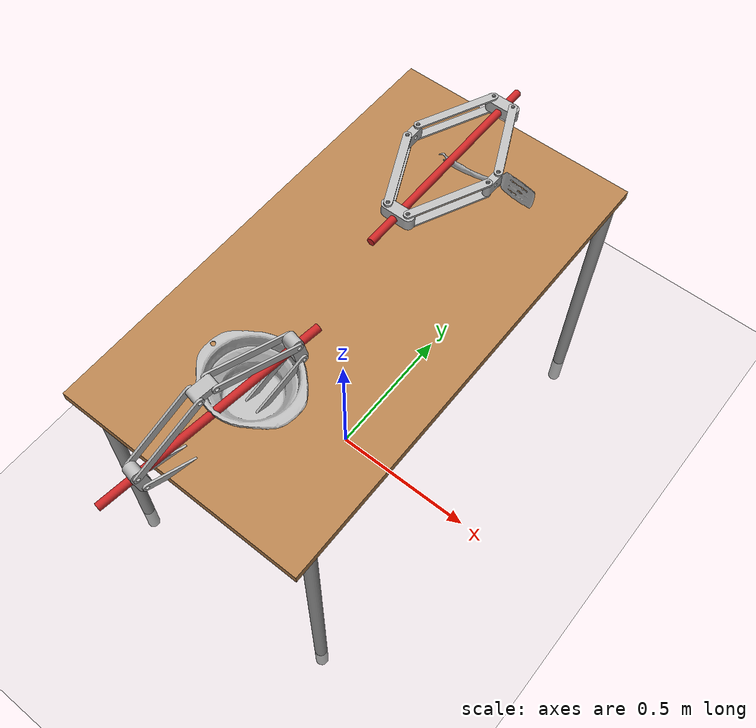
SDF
<?xml version='1.0'?>
<sdf version="1.6">
    <world name="big_bowl_spatula_v">

        <include>
            <uri>model://sun</uri>
        </include>

        <include>
            <uri>model://ground_plane</uri>
        </include>

        <include>
            <uri>model://b_spatula</uri>
            <pose>0.140489 0.527566 0.997957 1.571605 -0.058101 -2.939758</pose>
        </include>

        <plugin name="grains_factory" filename="libGrainsFactoryPlugin.so">
            <pose>0.024164 -0.383989 0.959287 0 0 0</pose>
            <mass>0.001</mass>
            <radius>0.015</radius>
            <quantity>100</quantity>
            <friction>0.4</friction>
            <friction2>0.4</friction2>
            <velocity_decay>0.3</velocity_decay>
        </plugin>

        <include>
            <uri>model://b_big_bowl</uri>
            <pose>0.024164 -0.383989 0.959287 -0.017186 -0.000884 -0.101566</pose>
        </include>

        <include>
            <uri>model://table</uri>
            <pose>0.021929 0.062805 -0.116833 0 0 -1.571974</pose>
        </include>

        <!-- Left Gripper -->
        <include>
            <uri>model://gripper</uri>
            <name>left_ee</name>
            <pose>0 0.5 1 0 0 0</pose>

            <plugin name="l_force_controller" filename="libvelocity_controller_plugin.so">
              <linkName>link</linkName>
              <topicName>set_l_ee_twist</topicName>
              <gains>
                <linear>
                  <P>0.1</P>
                  <I>0.0</I>
                  <D>0.02</D>
                </linear>
                <angular>
                  <P>0.0001</P>
                  <I>0.0</I>
                  <D>0.000002</D>
                </angular>
              </gains>
            </plugin>

            <plugin name="l_grip" filename="libGripPlugin.so">
              <parentLinkName>link</parentLinkName>
              <childLinkName>b_spatula::link</childLinkName>
              <relativePose>0.14 0.028 -0.002 -1.57 3.20 0.20</relativePose>
            </plugin>

        </include>

        <!-- Right Gripper -->
        <include>
            <uri>model://gripper</uri>
            <name>right_ee</name>
            <pose>0 -0.5 1 1.547368 1.402341 1.343703</pose>

            <plugin name="r_force_controller" filename="libvelocity_controller_plugin.so">
              <linkName>link</linkName>
              <topicName>set_r_ee_twist</topicName>
              <gains>
                <linear>
                  <P>0.1</P>
                  <I>0.0</I>
                  <D>0.02</D>
                </linear>
                <angular>
                  <P>0.1</P>
                  <I>0.0</I>
                  <D>0.002</D>
                </angular>
              </gains>
            </plugin>

            <plugin name="r_grip" filename="libGripPlugin.so">
              <parentLinkName>link</parentLinkName>
              <childLinkName>b_big_bowl::link</childLinkName>
              <relativePose>0.06 0.11 0 -1.57 -1.35 1.3</relativePose>
            </plugin>

        </include>

        <plugin name="feature_visualization_plugin" filename="libgiskard_visualization_plugin.so"></plugin>

        <gui>
            <camera name='user_camera'>
                <pose>1.700789 1.175709 1.670612 0 0.375643 -2.675000</pose>
                <view_controller>orbit</view_controller>
            </camera>
        </gui>

    </world>
</sdf>

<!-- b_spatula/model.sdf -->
<sdf version='1.6'>
	<model name='b_spatula'>
		<static>false</static>
		<pose>0 0 0 0 0 0</pose>

		<link name='link'>
			<inertial>
			<mass>0.11</mass>
			<pose>0.00088072 -6.5132e-05 0.00086388 0 0 0</pose>
				<inertia>
					<ixx>8.1404e-07</ixx>
					<ixy>0</ixy>
					<ixz>0</ixz>
					<iyy>1.1521e-06</iyy>
					<iyz>0</iyz>
					<izz>5.3661e-07</izz>
				</inertia>
			</inertial>

			<sensor name="tool_contact_sensor" type="contact">
				<always_on>true</always_on>
				<update_rate>30.0</update_rate>
				<contact>
					<collision>collision</collision>
				</contact>
				<plugin name="tool_bumper" filename="libgazebo_ros_bumper.so">
					<bumperTopicName>tool_contact_sensor_state</bumperTopicName>
					<frameName>world</frameName>
				</plugin>
			</sensor>

			<collision name='collision'>
				<geometry>
					<mesh>
						<uri>model://b_spatula/b_spatula.dae</uri>
					</mesh>
				</geometry>
				<surface>
					<friction>
						<ode>
							<mu>0.2</mu>
							<mu2>0.2</mu2>
						</ode>
					</friction>
				</surface>
			</collision>
			<visual name='visual'>
				<geometry>
					<mesh>
						<uri>model://b_spatula/b_spatula.dae</uri>
					</mesh>
				</geometry>
			</visual>
		</link>
	</model>
</sdf>

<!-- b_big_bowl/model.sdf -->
<sdf version='1.6'>
	<model name='b_big_bowl'>
		<static>false</static>
		<pose>0 0 0 0 0 0</pose>

		<link name='link'>
			<inertial>
			<mass>0.35</mass>
			<pose>-0.0022966 -0.0039142 0.0041527 0 0 0</pose>
				<inertia>
					<ixx>0.0009479167</ixx>
					<iyy>0.0009479167</iyy>
					<izz>0.00175</izz>
				</inertia>
			</inertial>
			<collision name='collision'>
				<geometry>
					<mesh>
						<uri>model://b_big_bowl/b_big_bowl.dae</uri>
					</mesh>
				</geometry>
				<surface>
					<friction>
						<ode>
							<mu>0.2</mu>
							<mu2>0.2</mu2>
						</ode>
					</friction>
				</surface>
			</collision>
			<visual name='visual'>
				<geometry>
					<mesh>
						<uri>model://b_big_bowl/b_big_bowl.dae</uri>
					</mesh>
				</geometry>
			</visual>
		</link>
	</model>
</sdf>

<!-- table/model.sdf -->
<sdf version="1.5">
  <model name="table">
    <static>true</static>
    <link name="link">
      <collision name="surface">
        <pose>0 0 1.0 0 0 0</pose>
        <geometry>
          <box>
            <size>1.5 0.8 0.03</size>
          </box>
        </geometry>
        <surface>
          <friction>
            <ode>
              <mu>0.6</mu>
              <mu2>0.6</mu2>
            </ode>
          </friction>
        </surface>
      </collision>
      <visual name="visual1">
        <pose>0 0 1.0 0 0 0</pose>
        <geometry>
          <box>
            <size>1.5 0.8 0.03</size>
          </box>
        </geometry>
        <material>
          <script>
            <uri>model://media/materials/scripts/gazebo.material</uri>
            <name>Gazebo/Wood</name>
          </script>
        </material>
      </visual>
      <collision name="front_left_leg">
        <pose>0.68 0.38 0.5 0 0 0</pose>
        <geometry>
          <cylinder>
            <radius>0.02</radius>
            <length>1.0</length>
          </cylinder>
        </geometry>
      </collision>
      <visual name="front_left_leg">
        <pose>0.68 0.38 0.5 0 0 0</pose>
        <geometry>
          <cylinder>
            <radius>0.02</radius>
            <length>1.0</length>
          </cylinder>
        </geometry>
        <material>
          <script>
            <uri>model://media/materials/scripts/gazebo.material</uri>
            <name>Gazebo/Grey</name>
          </script>
        </material>
      </visual>
      <collision name="front_right_leg">
        <pose>0.68 -0.38 0.5 0 0 0</pose>
        <geometry>
          <cylinder>
            <radius>0.02</radius>
            <length>1.0</length>
          </cylinder>
        </geometry>
      </collision>
      <visual name="front_right_leg">
        <pose>0.68 -0.38 0.5 0 0 0</pose>
        <geometry>
          <cylinder>
            <radius>0.02</radius>
            <length>1.0</length>
          </cylinder>
        </geometry>
        <material>
          <script>
            <uri>model://media/materials/scripts/gazebo.material</uri>
            <name>Gazebo/Grey</name>
          </script>
        </material>
      </visual>
      <collision name="back_right_leg">
        <pose>-0.68 -0.38 0.5 0 0 0</pose>
        <geometry>
          <cylinder>
            <radius>0.02</radius>
            <length>1.0</length>
          </cylinder>
        </geometry>
      </collision>
      <visual name="back_right_leg">
        <pose>-0.68 -0.38 0.5 0 0 0</pose>
        <geometry>
          <cylinder>
            <radius>0.02</radius>
            <length>1.0</length>
          </cylinder>
        </geometry>
        <material>
          <script>
            <uri>model://media/materials/scripts/gazebo.material</uri>
            <name>Gazebo/Grey</name>
          </script>
        </material>
      </visual>
      <collision name="back_left_leg">
        <pose>-0.68 0.38 0.5 0 0 0</pose>
        <geometry>
          <cylinder>
            <radius>0.02</radius>
            <length>1.0</length>
          </cylinder>
        </geometry>
      </collision>
      <visual name="back_left_leg">
        <pose>-0.68 0.38 0.5 0 0 0</pose>
        <geometry>
          <cylinder>
            <radius>0.02</radius>
            <length>1.0</length>
          </cylinder>
        </geometry>
        <material>
          <script>
            <uri>model://media/materials/scripts/gazebo.material</uri>
            <name>Gazebo/Grey</name>
          </script>
        </material>
      </visual>
    </link>
  </model>
</sdf>

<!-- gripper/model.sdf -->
<sdf version="1.6">
  <model name='gripper'>
    <static>False</static>
    <link name='left_long_joint'>
      <pose>0 0.25 0.019 -1.57 0 0</pose>
      <inertial>
        <pose>-0.000104 -0.000077 -0.0 0 0 0</pose>
        <mass>0.3186</mass>
        <inertia>
          <ixx>7.938e-05</ixx>
          <ixy>0</ixy>
          <ixz>0</ixz>
          <iyy>3.3715e-04</iyy>
          <iyz>0</iyz>
          <izz>3.3664e-04</izz>
        </inertia>
      </inertial>
      <collision name="collision">
        <geometry>
          <mesh>
            <uri>model://gripper/meshes/joint_long.dae</uri>
            <scale>1 1 1</scale>
          </mesh>
        </geometry>
        <surface>
          <contact>
            <collide_bitmask>0xffff</collide_bitmask>
          </contact>
          <friction>
            <ode>
              <mu>100</mu>
              <mu2>50</mu2>
            </ode>
          </friction>
        </surface>
      </collision>
      <visual name='visual'>
        <geometry>
          <mesh>
            <uri>model://gripper/meshes/joint_long.dae</uri>
            <scale>1 1 1</scale>
          </mesh>
        </geometry>
      </visual>
    </link>
    <link name='right_long_joint'>
      <pose>0 -0.25 0.019 -1.57 0 0</pose>
      <collision name="collision">
        <geometry>
          <mesh>
            <uri>model://gripper/meshes/joint_long.dae</uri>
            <scale>1 1 1</scale>
          </mesh>
        </geometry>
        <surface>
          <contact>
            <collide_bitmask>0xffff</collide_bitmask>
          </contact>
          <friction>
            <ode>
              <mu>100</mu>
              <mu2>50</mu2>
            </ode>
          </friction>
        </surface>
      </collision>
      <visual name='visual'>
        <geometry>
          <mesh>
            <uri>model://gripper/meshes/joint_long.dae</uri>
            <scale>1 1 1</scale>
          </mesh>
        </geometry>
      </visual>
      <inertial>
        <pose>-0.000104 -0.000077 -0.0 0 0 0</pose>
        <mass>0.3186</mass>
        <inertia>
          <ixx>7.938e-05</ixx>
          <ixy>0</ixy>
          <ixz>0</ixz>
          <iyy>3.3715e-04</iyy>
          <iyz>0</iyz>
          <izz>3.3664e-04</izz>
        </inertia>
      </inertial>
    </link>
    <link name='left_short_joint'>
      <pose>0.14 0 0 1.57 0 1.57</pose>
      <collision name="collision">
        <geometry>
          <mesh>
            <uri>model://gripper/meshes/joint_short.dae</uri>
            <scale>1 1 1</scale>
          </mesh>
        </geometry>
        <surface>
          <contact>
            <collide_bitmask>0xffff</collide_bitmask>
          </contact>
          <friction>
            <ode>
              <mu>100</mu>
              <mu2>50</mu2>
            </ode>
          </friction>
        </surface>
      </collision>
      <visual name='visual'>
        <geometry>
          <mesh>
            <uri>model://gripper/meshes/joint_short.dae</uri>
            <scale>1 1 1</scale>
          </mesh>
        </geometry>
      </visual>
      <inertial>
        <pose>0.0 0.01896 -0.000157 0 0 0</pose>
        <mass>0.1512</mass>
        <inertia>
          <ixx>2.689e-05</ixx>
          <ixy>-0</ixy>
          <ixz>-0</ixz>
          <iyy>6.696e-05</iyy>
          <iyz>0</iyz>
          <izz>7.741e-05</izz>
        </inertia>
      </inertial>
    </link>
    <link name='right_short_joint'>
      <pose>-0.14 0 0 1.57 0 1.57</pose>
      <collision name="collision">
        <geometry>
          <mesh>
            <uri>model://gripper/meshes/joint_short.dae</uri>
            <scale>1 1 1</scale>
          </mesh>
        </geometry>
        <surface>
          <contact>
            <collide_bitmask>0xffff</collide_bitmask>
          </contact>
          <friction>
            <ode>
              <mu>100</mu>
              <mu2>50</mu2>
            </ode>
          </friction>
        </surface>
      </collision>
      <visual name='visual'>
        <geometry>
          <mesh>
            <uri>model://gripper/meshes/joint_short.dae</uri>
            <scale>1 1 1</scale>
          </mesh>
        </geometry>
      </visual>
      <inertial>
        <pose>0.0 0.01896 -0.000157 0 0 0</pose>
        <mass>0.1512</mass>
        <inertia>
          <ixx>2.689e-05</ixx>
          <ixy>-0</ixy>
          <ixz>-0</ixz>
          <iyy>6.696e-05</iyy>
          <iyz>0</iyz>
          <izz>7.741e-05</izz>
        </inertia>
      </inertial>
    </link>
    <link name='flat_plate1'>
      <pose>0.0456 0.2565 0.038 1.57 0 -1.132</pose>
      <collision name="collision">
        <geometry>
          <mesh>
            <uri>model://gripper/meshes/flat_plate.dae</uri>
            <scale>1 1 1</scale>
          </mesh>
        </geometry>
        <surface>
          <contact>
            <collide_bitmask>0xffff</collide_bitmask>
          </contact>
          <friction>
            <ode>
              <mu>100</mu>
              <mu2>50</mu2>
            </ode>
          </friction>
        </surface>
      </collision>
      <visual name='visual'>
        <geometry>
          <mesh>
            <uri>model://gripper/meshes/flat_plate.dae</uri>
            <scale>1 1 1</scale>
          </mesh>
        </geometry>
      </visual>
      <inertial>
        <pose>0.125 0.00325 0.012500 0 0 0</pose>
        <mass>0.0651</mass>
        <inertia>
          <ixx>3.689e-06</ixx>
          <ixy>-0</ixy>
          <ixz>-0</ixz>
          <iyy>3.797e-04</iyy>
          <iyz>0</iyz>
          <izz>3.764e-04</izz>
        </inertia>
      </inertial>
    </link>
    <link name='flat_plate2'>
      <pose>-0.1289 -0.02 0.038 1.57 0 -1.132</pose>
      <collision name="collision">
        <geometry>
          <mesh>
            <uri>model://gripper/meshes/flat_plate.dae</uri>
            <scale>1 1 1</scale>
          </mesh>
        </geometry>
        <surface>
          <contact>
            <collide_bitmask>0xffff</collide_bitmask>
          </contact>
          <friction>
            <ode>
              <mu>100</mu>
              <mu2>50</mu2>
            </ode>
          </friction>
        </surface>
      </collision>
      <visual name='visual'>
        <geometry>
          <mesh>
            <uri>model://gripper/meshes/flat_plate.dae</uri>
            <scale>1 1 1</scale>
          </mesh>
        </geometry>
      </visual>
      <inertial>
        <pose>0.125 0.00325 0.012500 0 0 0</pose>
        <mass>0.0651</mass>
        <inertia>
          <ixx>3.689e-06</ixx>
          <ixy>-0</ixy>
          <ixz>-0</ixz>
          <iyy>3.797e-04</iyy>
          <iyz>0</iyz>
          <izz>3.764e-04</izz>
        </inertia>
      </inertial>
    </link>
    <link name='flat_plate3'>
      <pose>-0.1515 0.031 0.038 1.57 0 1.132</pose>
      <collision name="collision">
        <geometry>
          <mesh>
            <uri>model://gripper/meshes/flat_plate.dae</uri>
            <scale>1 1 1</scale>
          </mesh>
        </geometry>
        <surface>
          <contact>
            <collide_bitmask>0xffff</collide_bitmask>
          </contact>
          <friction>
            <ode>
              <mu>100</mu>
              <mu2>50</mu2>
            </ode>
          </friction>
        </surface>
      </collision>
      <visual name='visual'>
        <geometry>
          <mesh>
            <uri>model://gripper/meshes/flat_plate.dae</uri>
            <scale>1 1 1</scale>
          </mesh>
        </geometry>
      </visual>
      <inertial>
        <pose>0.125 0.00325 0.012500 0 0 0</pose>
        <mass>0.0651</mass>
        <inertia>
          <ixx>3.689e-06</ixx>
          <ixy>-0</ixy>
          <ixz>-0</ixz>
          <iyy>3.797e-04</iyy>
          <iyz>0</iyz>
          <izz>3.764e-04</izz>
        </inertia>
      </inertial>
    </link>
    <link name='flat_plate4'>
      <pose>0.022 -0.245 0.038 1.57 0 1.132</pose>
      <collision name="collision">
        <geometry>
          <mesh>
            <uri>model://gripper/meshes/flat_plate.dae</uri>
            <scale>1 1 1</scale>
          </mesh>
        </geometry>
        <surface>
          <contact>
            <collide_bitmask>0xffff</collide_bitmask>
          </contact>
          <friction>
            <ode>
              <mu>100</mu>
              <mu2>50</mu2>
            </ode>
          </friction>
        </surface>
      </collision>
      <visual name='visual'>
        <geometry>
          <mesh>
            <uri>model://gripper/meshes/flat_plate.dae</uri>
            <scale>1 1 1</scale>
          </mesh>
        </geometry>
      </visual>
      <inertial>
        <pose>0.125 0.00325 0.012500 0 0 0</pose>
        <mass>0.0651</mass>
        <inertia>
          <ixx>3.689e-06</ixx>
          <ixy>-0</ixy>
          <ixz>-0</ixz>
          <iyy>3.797e-04</iyy>
          <iyz>0</iyz>
          <izz>3.764e-04</izz>
        </inertia>
      </inertial>
    </link>

    <link name='flat_plate5'>
      <pose>0.0456 0.2565 -0.007 1.57 0 -1.132</pose>
      <collision name="collision">
        <geometry>
          <mesh>
            <uri>model://gripper/meshes/flat_plate.dae</uri>
            <scale>1 1 1</scale>
          </mesh>
        </geometry>
        <surface>
          <contact>
            <collide_bitmask>0xffff</collide_bitmask>
          </contact>
          <friction>
            <ode>
              <mu>100</mu>
              <mu2>50</mu2>
            </ode>
          </friction>
        </surface>
      </collision>
      <visual name='visual'>
        <geometry>
          <mesh>
            <uri>model://gripper/meshes/flat_plate.dae</uri>
            <scale>1 1 1</scale>
          </mesh>
        </geometry>
      </visual>
      <inertial>
        <pose>0.125 0.00325 0.012500 0 0 0</pose>
        <mass>0.0651</mass>
        <inertia>
          <ixx>3.689e-06</ixx>
          <ixy>-0</ixy>
          <ixz>-0</ixz>
          <iyy>3.797e-04</iyy>
          <iyz>0</iyz>
          <izz>3.764e-04</izz>
        </inertia>
      </inertial>
    </link>
    <link name='flat_plate6'>
      <pose>-0.1289 -0.02 -0.007 1.57 0 -1.132</pose>
      <collision name="collision">
        <geometry>
          <mesh>
            <uri>model://gripper/meshes/flat_plate.dae</uri>
            <scale>1 1 1</scale>
          </mesh>
        </geometry>
        <surface>
          <contact>
            <collide_bitmask>0xffff</collide_bitmask>
          </contact>
          <friction>
            <ode>
              <mu>100</mu>
              <mu2>50</mu2>
            </ode>
          </friction>
        </surface>
      </collision>
      <visual name='visual'>
        <geometry>
          <mesh>
            <uri>model://gripper/meshes/flat_plate.dae</uri>
            <scale>1 1 1</scale>
          </mesh>
        </geometry>
      </visual>
      <inertial>
        <pose>0.125 0.00325 0.012500 0 0 0</pose>
        <mass>0.0651</mass>
        <inertia>
          <ixx>3.689e-06</ixx>
          <ixy>-0</ixy>
          <ixz>-0</ixz>
          <iyy>3.797e-04</iyy>
          <iyz>0</iyz>
          <izz>3.764e-04</izz>
        </inertia>
      </inertial>
    </link>
    <link name='flat_plate7'>
      <pose>-0.1515 0.031 -0.007 1.57 0 1.132</pose>
      <collision name="collision">
        <geometry>
          <mesh>
            <uri>model://gripper/meshes/flat_plate.dae</uri>
            <scale>1 1 1</scale>
          </mesh>
        </geometry>
        <surface>
          <contact>
            <collide_bitmask>0xffff</collide_bitmask>
          </contact>
          <friction>
            <ode>
              <mu>100</mu>
              <mu2>50</mu2>
            </ode>
          </friction>
        </surface>
      </collision>
      <visual name='visual'>
        <geometry>
          <mesh>
            <uri>model://gripper/meshes/flat_plate.dae</uri>
            <scale>1 1 1</scale>
          </mesh>
        </geometry>
      </visual>
      <inertial>
        <pose>0.125 0.00325 0.012500 0 0 0</pose>
        <mass>0.0651</mass>
        <inertia>
          <ixx>3.689e-06</ixx>
          <ixy>-0</ixy>
          <ixz>-0</ixz>
          <iyy>3.797e-04</iyy>
          <iyz>0</iyz>
          <izz>3.764e-04</izz>
        </inertia>
      </inertial>
    </link>
    <link name='flat_plate8'>
      <pose>0.022 -0.245 -0.007 1.57 0 1.132</pose>
      <collision name="collision">
        <geometry>
          <mesh>
            <uri>model://gripper/meshes/flat_plate.dae</uri>
            <scale>1 1 1</scale>
          </mesh>
        </geometry>
        <surface>
          <contact>
            <collide_bitmask>0xffff</collide_bitmask>
          </contact>
          <friction>
            <ode>
              <mu>100</mu>
              <mu2>50</mu2>
            </ode>
          </friction>
        </surface>
      </collision>
      <visual name='visual'>
        <geometry>
          <mesh>
            <uri>model://gripper/meshes/flat_plate.dae</uri>
            <scale>1 1 1</scale>
          </mesh>
        </geometry>
      </visual>
      <inertial>
        <pose>0.125 0.00325 0.012500 0 0 0</pose>
        <mass>0.0651</mass>
        <inertia>
          <ixx>3.689e-06</ixx>
          <ixy>-0</ixy>
          <ixz>-0</ixz>
          <iyy>3.797e-04</iyy>
          <iyz>0</iyz>
          <izz>3.764e-04</izz>
        </inertia>
      </inertial>
    </link>

    <link name='screw_rod'>
      <pose>-0.00015 -0.02 0.0153 0 1.57 1.57 </pose>
      <collision name="collision">
        <geometry>
          <cylinder>
            <radius>0.012</radius>
            <length>1</length>
          </cylinder>
        </geometry>
      </collision>
      <visual name="visual">
        <material>
          <script>
            <name>Gazebo/Red</name>
            <uri>file://media/materials/scripts/gazebo.material</uri>
          </script>
          <shader type='pixel'/>
        </material>
        <geometry>
          <cylinder>
            <radius>0.012</radius>
            <length>0.7</length>
          </cylinder>
        </geometry>
      </visual>
      <inertial>
        <pose>0 0 0.32263 0 1.57 0</pose>
        <mass>1.29</mass>
        <inertia>
          <ixx>1.8357e-04</ixx>
          <ixy>-0</ixy>
          <ixz>-0</ixz>
          <iyy>8.006e-02</iyy>
          <iyz>0</iyz>
          <izz>8.006e-02</izz>
        </inertia>
      </inertial>
    </link>

    <joint name="j1" type="revolute">
      <pose> 0.25 0 0.01 0 0 0</pose>
      <child>flat_plate1</child>
      <parent>left_short_joint</parent>
      <axis>
        <limit>
          <lower>-0.5</lower>
          <upper>0.1</upper>
        </limit>
        <xyz>0 1 0</xyz>
      </axis>
    </joint>
    <joint name="j2" type="revolute">
      <pose> 0 0 0.01 0 0 0</pose>
      <child>flat_plate1</child>
      <parent>left_long_joint</parent>
      <axis>
        <limit>
          <lower>-0.5</lower>
          <upper>0.1</upper>
        </limit>
        <xyz>0 1 0</xyz>
      </axis>
    </joint>
    <joint name="j3" type="revolute">
      <pose> 0 0 0.01 0 0 0</pose>
      <child>flat_plate2</child>
      <parent>right_short_joint</parent>
      <axis>
        <limit>
          <lower>-0.5</lower>
          <upper>0.1</upper>
        </limit>
        <xyz>0 1 0</xyz>
      </axis>
    </joint>
    <joint name="j4" type="revolute">
      <pose> 0.25 0 0.01 0 0 0</pose>
      <child>flat_plate2</child>
      <parent>right_long_joint</parent>
      <axis>
        <limit>
          <lower>-0.5</lower>
          <upper>0.1</upper>
        </limit>
        <xyz>0 1 0</xyz>
      </axis>
    </joint>
    <joint name="j5" type="revolute">
      <pose> 0 0 0.01 0 0 0</pose>
      <child>flat_plate3</child>
      <parent>right_short_joint</parent>
      <axis>
        <limit>
          <lower>-0.5</lower>
          <upper>0.1</upper>
        </limit>
        <xyz>0 1 0</xyz>
      </axis>
    </joint>
    <joint name="j6" type="revolute">
      <pose> 0.25 0 0.01 0 0 0</pose>
      <child>flat_plate3</child>
      <parent>left_long_joint</parent>
      <axis>
        <limit>
          <lower>-0.5</lower>
          <upper>0.1</upper>
        </limit>
        <xyz>0 1 0</xyz>
      </axis>
    </joint>
    <joint name="j7" type="revolute">
      <pose> 0.25 0 0.01 0 0 0</pose>
      <child>flat_plate4</child>
      <parent>left_short_joint</parent>
      <axis>
        <limit>
          <lower>-0.5</lower>
          <upper>0.1</upper>
        </limit>
        <xyz>0 1 0</xyz>
      </axis>
    </joint>
    <joint name="j8" type="revolute">
      <pose> 0 0 0.01 0 0 0</pose>
      <child>flat_plate4</child>
      <parent>right_long_joint</parent>
      <axis>
        <limit>
          <lower>-0.5</lower>
          <upper>0.1</upper>
        </limit>
        <xyz>0 1 0</xyz>
      </axis>
    </joint>

    <joint name="j9" type="revolute">
      <pose> 0.25 0 0.01 0 0 0</pose>
      <child>flat_plate5</child>
      <parent>left_short_joint</parent>
      <axis>
        <limit>
          <lower>-0.5</lower>
          <upper>0.1</upper>
        </limit>
        <xyz>0 -1 0</xyz>
      </axis>
    </joint>
    <joint name="j10" type="revolute">
      <pose> 0 0 0.01 0 0 0</pose>
      <child>flat_plate5</child>
      <parent>left_long_joint</parent>
      <axis>
        <limit>
          <lower>-0.5</lower>
          <upper>0.1</upper>
        </limit>
        <xyz>0 -1 0</xyz>
      </axis>
    </joint>
    <joint name="j11" type="revolute">
      <pose> 0 0 0.01 0 0 0</pose>
      <child>flat_plate6</child>
      <parent>right_short_joint</parent>
      <axis>
        <limit>
          <lower>-0.5</lower>
          <upper>0.1</upper>
        </limit>
        <xyz>0 -1 0</xyz>
      </axis>
    </joint>
    <joint name="j12" type="revolute">
      <pose> 0.25 0 0.01 0 0 0</pose>
      <child>flat_plate6</child>
      <parent>right_long_joint</parent>
      <axis>
        <limit>
          <lower>-0.5</lower>
          <upper>0.1</upper>
        </limit>
        <xyz>0 -1 0</xyz>
      </axis>
    </joint>
    <joint name="j13" type="revolute">
      <pose> 0 0 0.01 0 0 0</pose>
      <child>flat_plate7</child>
      <parent>right_short_joint</parent>
      <axis>
        <limit>
          <lower>-0.5</lower>
          <upper>0.1</upper>
        </limit>
        <xyz>0 -1 0</xyz>
      </axis>
    </joint>
    <joint name="j14" type="revolute">
      <pose> 0.25 0 0.01 0 0 0</pose>
      <child>flat_plate7</child>
      <parent>left_long_joint</parent>
      <axis>
        <limit>
          <lower>-0.5</lower>
          <upper>0.1</upper>
        </limit>
        <xyz>0 -1 0</xyz>
      </axis>
    </joint>
    <joint name="j15" type="revolute">
      <pose> 0.25 0 0.01 0 0 0</pose>
      <child>flat_plate8</child>
      <parent>left_short_joint</parent>
      <axis>
        <limit>
          <lower>-0.5</lower>
          <upper>0.1</upper>
        </limit>
        <xyz>0 -1 0</xyz>
      </axis>
    </joint>
    <joint name="j16" type="revolute">
      <pose> 0 0 0.01 0 0 0</pose>
      <child>flat_plate8</child>
      <parent>right_long_joint</parent>
      <axis>
        <limit>
          <lower>-0.5</lower>
          <upper>0.1</upper>
        </limit>
        <xyz>0 -1 0</xyz>
      </axis>
    </joint>
    <joint name="piston_joint_1" type ="screw">
      <pose>0 0.004 0 0 0 0</pose>
      <parent>screw_rod</parent>
      <child>right_long_joint</child>
      <axis>
        <xyz>0 1 0</xyz>
      </axis>
      <thread_pitch>100</thread_pitch>
    </joint>

    <joint name="piston_joint_2" type ="screw">
      <pose>0 0.004 0 0 0 0</pose>
      <parent>screw_rod</parent>
      <child>left_long_joint</child>
      <axis>
        <xyz>0 1 0</xyz>
      </axis>
      <thread_pitch>-100</thread_pitch>
    </joint>

    <plugin name="gripper_plugin" filename="libiarc_gripper_plugin.so">
      <namespace>firefly</namespace>
      <link_name>screw_rod</link_name>
      <torque_magnitude>1.5</torque_magnitude>
    </plugin>
  </model>
</sdf>
